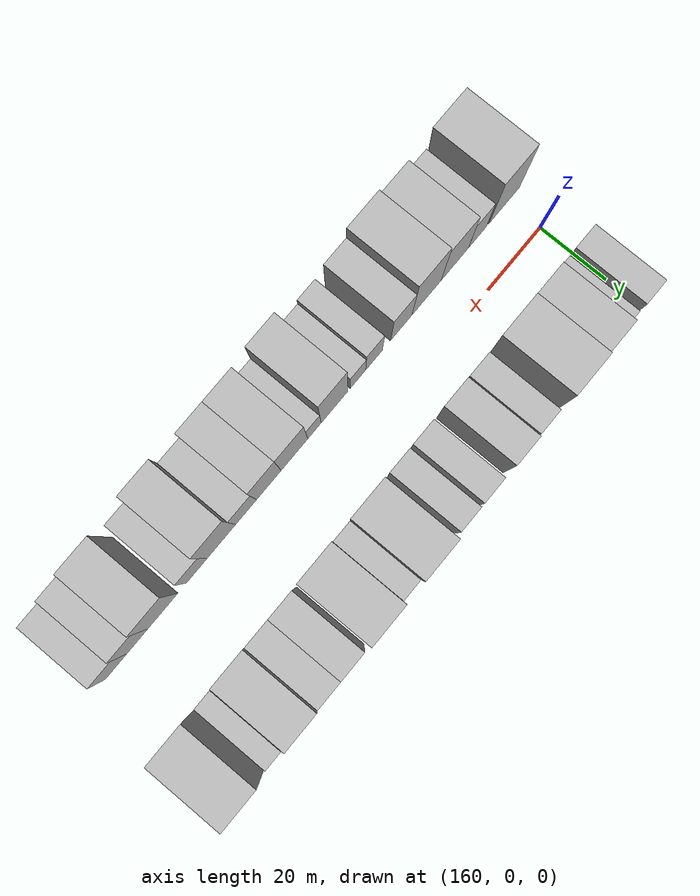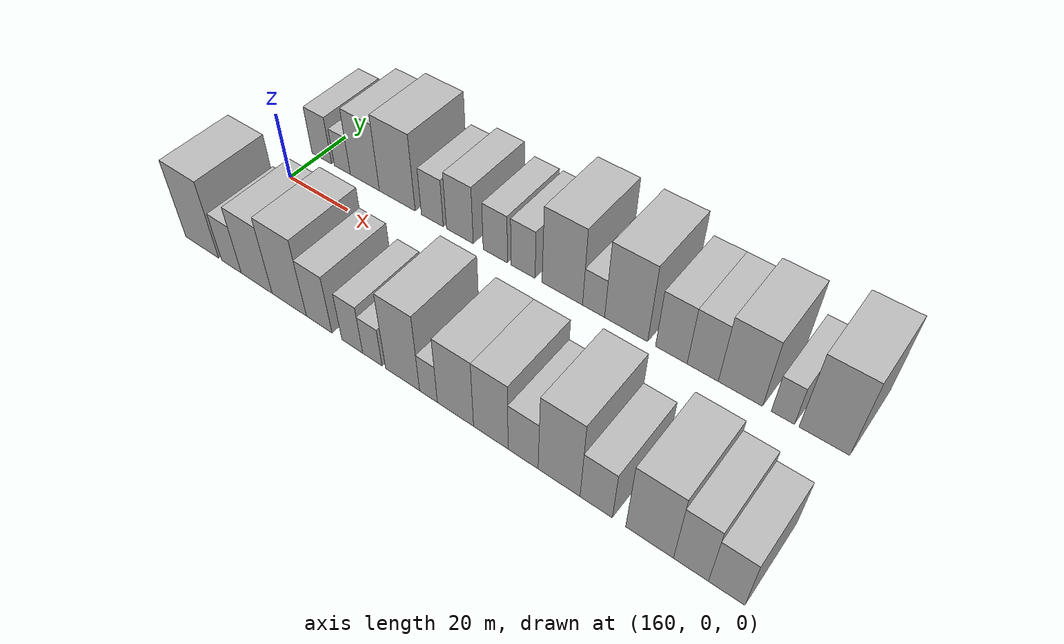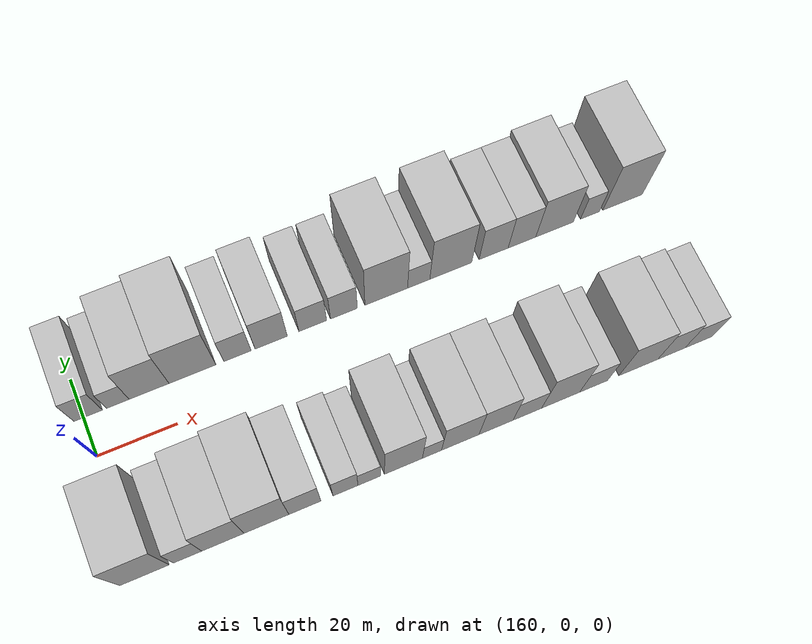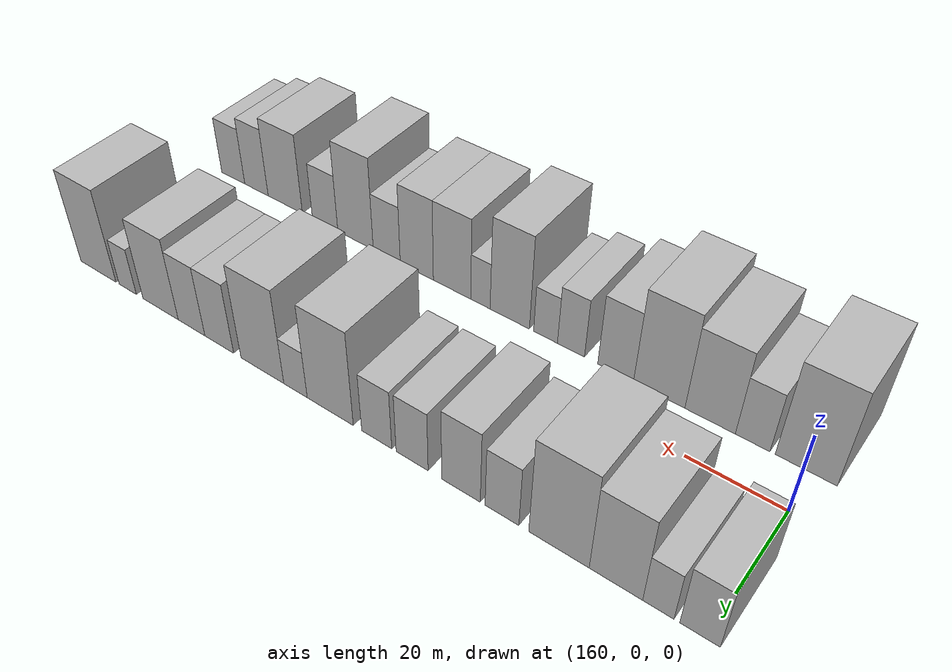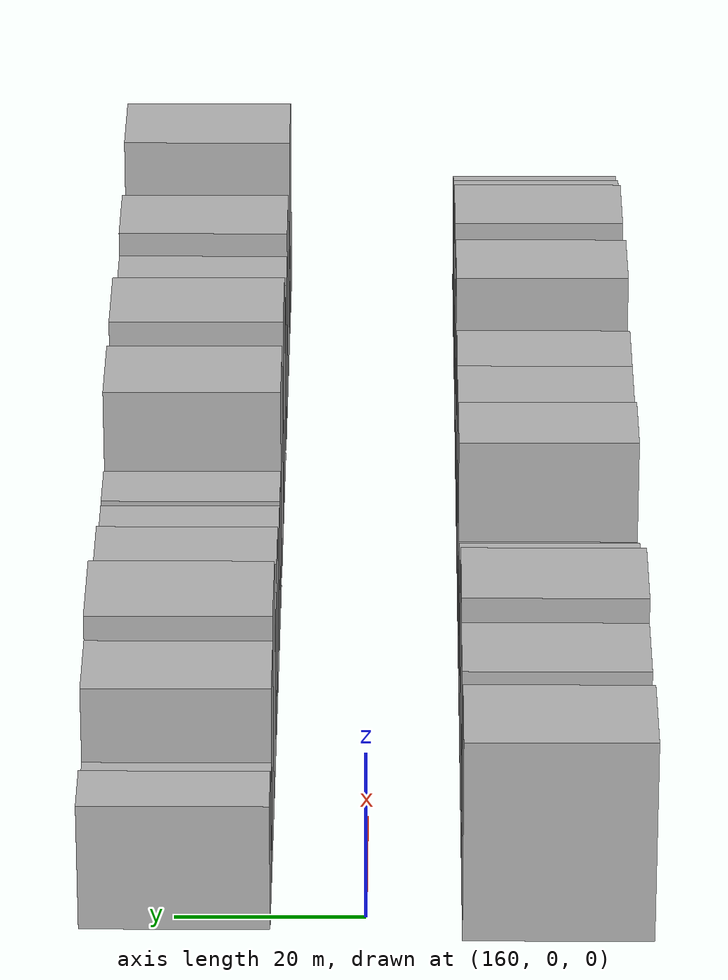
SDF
<sdf version="1.6">
 <world name="default">
  <model name="building_15">
   <static>1</static>
   <pose>161.1512 20.0000 0 0.000000 0.000000 1.570796</pose>
   <link name="link">
    <pose>0 0 7.50 0 0 0</pose>
    <collision name="collision"><geometry><box><size>20.0000 7.0626 15.0000</size></box></geometry></collision>
    <visual name="visual">
     <cast_shadows>0</cast_shadows>
     <geometry><box><size>20.0000 7.0626 15.0000</size></box></geometry>
     <material>
      <script>
       <uri>model://HANNAS_wall/materials/scripts</uri>
       <uri>model://HANNAS_wall/materials/textures</uri>
       <name>vrc/HANNAS_wall</name>
      </script>
     </material>
    </visual>
   </link>
  </model>
  <model name="building_16">
   <static>1</static>
   <pose>168.5036 20.0000 0 0.000000 0.000000 1.570796</pose>
   <link name="link">
    <pose>0 0 6.00 0 0 0</pose>
    <collision name="collision"><geometry><box><size>20.0000 5.6421 12.0000</size></box></geometry></collision>
    <visual name="visual">
     <cast_shadows>0</cast_shadows>
     <geometry><box><size>20.0000 5.6421 12.0000</size></box></geometry>
     <material>
      <script>
       <uri>model://HANNAS_wall/materials/scripts</uri>
       <uri>model://HANNAS_wall/materials/textures</uri>
       <name>vrc/HANNAS_wall</name>
      </script>
     </material>
    </visual>
   </link>
  </model>
  <model name="building_17">
   <static>1</static>
   <pose>176.3258 20.0000 0 0.000000 0.000000 1.570796</pose>
   <link name="link">
    <pose>0 0 10.50 0 0 0</pose>
    <collision name="collision"><geometry><box><size>20.0000 10.0022 21.0000</size></box></geometry></collision>
    <visual name="visual">
     <cast_shadows>0</cast_shadows>
     <geometry><box><size>20.0000 10.0022 21.0000</size></box></geometry>
     <material>
      <script>
       <uri>model://HANNAS_wall/materials/scripts</uri>
       <uri>model://HANNAS_wall/materials/textures</uri>
       <name>vrc/HANNAS_wall</name>
      </script>
     </material>
    </visual>
   </link>
  </model>
  <model name="building_18">
   <static>1</static>
   <pose>187.2742 20.0000 0 0.000000 0.000000 1.570796</pose>
   <link name="link">
    <pose>0 0 12.00 0 0 0</pose>
    <collision name="collision"><geometry><box><size>20.0000 11.8946 24.0000</size></box></geometry></collision>
    <visual name="visual">
     <cast_shadows>0</cast_shadows>
     <geometry><box><size>20.0000 11.8946 24.0000</size></box></geometry>
     <material>
      <script>
       <uri>model://HANNAS_wall/materials/scripts</uri>
       <uri>model://HANNAS_wall/materials/textures</uri>
       <name>vrc/HANNAS_wall</name>
      </script>
     </material>
    </visual>
   </link>
  </model>
  <model name="building_19">
   <static>1</static>
   <pose>198.7314 20.0000 0 0.000000 0.000000 1.570796</pose>
   <link name="link">
    <pose>0 0 7.50 0 0 0</pose>
    <collision name="collision"><geometry><box><size>20.0000 7.0198 15.0000</size></box></geometry></collision>
    <visual name="visual">
     <cast_shadows>0</cast_shadows>
     <geometry><box><size>20.0000 7.0198 15.0000</size></box></geometry>
     <material>
      <script>
       <uri>model://HANNAS_wall/materials/scripts</uri>
       <uri>model://HANNAS_wall/materials/textures</uri>
       <name>vrc/HANNAS_wall</name>
      </script>
     </material>
    </visual>
   </link>
  </model>
  <model name="building_20">
   <static>1</static>
   <pose>207.4007 20.0000 0 0.000000 0.000000 1.570796</pose>
   <link name="link">
    <pose>0 0 9.00 0 0 0</pose>
    <collision name="collision"><geometry><box><size>20.0000 8.3186 18.0000</size></box></geometry></collision>
    <visual name="visual">
     <cast_shadows>0</cast_shadows>
     <geometry><box><size>20.0000 8.3186 18.0000</size></box></geometry>
     <material>
      <script>
       <uri>model://HANNAS_wall/materials/scripts</uri>
       <uri>model://HANNAS_wall/materials/textures</uri>
       <name>vrc/HANNAS_wall</name>
      </script>
     </material>
    </visual>
   </link>
  </model>
  <model name="building_21">
   <static>1</static>
   <pose>218.1752 20.0000 0 0.000000 0.000000 1.570796</pose>
   <link name="link">
    <pose>0 0 7.50 0 0 0</pose>
    <collision name="collision"><geometry><box><size>20.0000 7.2304 15.0000</size></box></geometry></collision>
    <visual name="visual">
     <cast_shadows>0</cast_shadows>
     <geometry><box><size>20.0000 7.2304 15.0000</size></box></geometry>
     <material>
      <script>
       <uri>model://HANNAS_wall/materials/scripts</uri>
       <uri>model://HANNAS_wall/materials/textures</uri>
       <name>vrc/HANNAS_wall</name>
      </script>
     </material>
    </visual>
   </link>
  </model>
  <model name="building_22">
   <static>1</static>
   <pose>226.3134 20.0000 0 0.000000 0.000000 1.570796</pose>
   <link name="link">
    <pose>0 0 7.50 0 0 0</pose>
    <collision name="collision"><geometry><box><size>20.0000 7.0461 15.0000</size></box></geometry></collision>
    <visual name="visual">
     <cast_shadows>0</cast_shadows>
     <geometry><box><size>20.0000 7.0461 15.0000</size></box></geometry>
     <material>
      <script>
       <uri>model://HANNAS_wall/materials/scripts</uri>
       <uri>model://HANNAS_wall/materials/textures</uri>
       <name>vrc/HANNAS_wall</name>
      </script>
     </material>
    </visual>
   </link>
  </model>
  <model name="building_23">
   <static>1</static>
   <pose>237.4874 20.0000 0 0.000000 0.000000 1.570796</pose>
   <link name="link">
    <pose>0 0 12.00 0 0 0</pose>
    <collision name="collision"><geometry><box><size>20.0000 11.3018 24.0000</size></box></geometry></collision>
    <visual name="visual">
     <cast_shadows>0</cast_shadows>
     <geometry><box><size>20.0000 11.3018 24.0000</size></box></geometry>
     <material>
      <script>
       <uri>model://HANNAS_wall/materials/scripts</uri>
       <uri>model://HANNAS_wall/materials/textures</uri>
       <name>vrc/HANNAS_wall</name>
      </script>
     </material>
    </visual>
   </link>
  </model>
  <model name="building_24">
   <static>1</static>
   <pose>246.1157 20.0000 0 0.000000 0.000000 1.570796</pose>
   <link name="link">
    <pose>0 0 6.00 0 0 0</pose>
    <collision name="collision"><geometry><box><size>20.0000 5.9548 12.0000</size></box></geometry></collision>
    <visual name="visual">
     <cast_shadows>0</cast_shadows>
     <geometry><box><size>20.0000 5.9548 12.0000</size></box></geometry>
     <material>
      <script>
       <uri>model://HANNAS_wall/materials/scripts</uri>
       <uri>model://HANNAS_wall/materials/textures</uri>
       <name>vrc/HANNAS_wall</name>
      </script>
     </material>
    </visual>
   </link>
  </model>
  <model name="building_25">
   <static>1</static>
   <pose>254.7373 20.0000 0 0.000000 0.000000 1.570796</pose>
   <link name="link">
    <pose>0 0 12.00 0 0 0</pose>
    <collision name="collision"><geometry><box><size>20.0000 11.2885 24.0000</size></box></geometry></collision>
    <visual name="visual">
     <cast_shadows>0</cast_shadows>
     <geometry><box><size>20.0000 11.2885 24.0000</size></box></geometry>
     <material>
      <script>
       <uri>model://HANNAS_wall/materials/scripts</uri>
       <uri>model://HANNAS_wall/materials/textures</uri>
       <name>vrc/HANNAS_wall</name>
      </script>
     </material>
    </visual>
   </link>
  </model>
  <model name="building_26">
   <static>1</static>
   <pose>266.3388 20.0000 0 0.000000 0.000000 1.570796</pose>
   <link name="link">
    <pose>0 0 9.00 0 0 0</pose>
    <collision name="collision"><geometry><box><size>20.0000 7.9144 18.0000</size></box></geometry></collision>
    <visual name="visual">
     <cast_shadows>0</cast_shadows>
     <geometry><box><size>20.0000 7.9144 18.0000</size></box></geometry>
     <material>
      <script>
       <uri>model://HANNAS_wall/materials/scripts</uri>
       <uri>model://HANNAS_wall/materials/textures</uri>
       <name>vrc/HANNAS_wall</name>
      </script>
     </material>
    </visual>
   </link>
  </model>
  <model name="building_27">
   <static>1</static>
   <pose>274.0850 20.0000 0 0.000000 0.000000 1.570796</pose>
   <link name="link">
    <pose>0 0 9.00 0 0 0</pose>
    <collision name="collision"><geometry><box><size>20.0000 7.5781 18.0000</size></box></geometry></collision>
    <visual name="visual">
     <cast_shadows>0</cast_shadows>
     <geometry><box><size>20.0000 7.5781 18.0000</size></box></geometry>
     <material>
      <script>
       <uri>model://HANNAS_wall/materials/scripts</uri>
       <uri>model://HANNAS_wall/materials/textures</uri>
       <name>vrc/HANNAS_wall</name>
      </script>
     </material>
    </visual>
   </link>
  </model>
  <model name="building_28">
   <static>1</static>
   <pose>283.0653 20.0000 0 0.000000 0.000000 1.570796</pose>
   <link name="link">
    <pose>0 0 10.50 0 0 0</pose>
    <collision name="collision"><geometry><box><size>20.0000 10.3824 21.0000</size></box></geometry></collision>
    <visual name="visual">
     <cast_shadows>0</cast_shadows>
     <geometry><box><size>20.0000 10.3824 21.0000</size></box></geometry>
     <material>
      <script>
       <uri>model://HANNAS_wall/materials/scripts</uri>
       <uri>model://HANNAS_wall/materials/textures</uri>
       <name>vrc/HANNAS_wall</name>
      </script>
     </material>
    </visual>
   </link>
  </model>
  <model name="building_29">
   <static>1</static>
   <pose>292.8766 20.0000 0 0.000000 0.000000 1.570796</pose>
   <link name="link">
    <pose>0 0 6.00 0 0 0</pose>
    <collision name="collision"><geometry><box><size>20.0000 5.2401 12.0000</size></box></geometry></collision>
    <visual name="visual">
     <cast_shadows>0</cast_shadows>
     <geometry><box><size>20.0000 5.2401 12.0000</size></box></geometry>
     <material>
      <script>
       <uri>model://HANNAS_wall/materials/scripts</uri>
       <uri>model://HANNAS_wall/materials/textures</uri>
       <name>vrc/HANNAS_wall</name>
      </script>
     </material>
    </visual>
   </link>
  </model>
  <model name="building_30">
   <static>1</static>
   <pose>302.0170 20.0000 0 0.000000 0.000000 1.570796</pose>
   <link name="link">
    <pose>0 0 12.00 0 0 0</pose>
    <collision name="collision"><geometry><box><size>20.0000 11.0407 24.0000</size></box></geometry></collision>
    <visual name="visual">
     <cast_shadows>0</cast_shadows>
     <geometry><box><size>20.0000 11.0407 24.0000</size></box></geometry>
     <material>
      <script>
       <uri>model://HANNAS_wall/materials/scripts</uri>
       <uri>model://HANNAS_wall/materials/textures</uri>
       <name>vrc/HANNAS_wall</name>
      </script>
     </material>
    </visual>
   </link>
  </model>
  <model name="building_47">
   <static>1</static>
   <pose>161.3607 -20.0000 0 0.000000 0.000000 1.570796</pose>
   <link name="link">
    <pose>0 0 12.00 0 0 0</pose>
    <collision name="collision"><geometry><box><size>20.0000 11.7005 24.0000</size></box></geometry></collision>
    <visual name="visual">
     <cast_shadows>0</cast_shadows>
     <geometry><box><size>20.0000 11.7005 24.0000</size></box></geometry>
     <material>
      <script>
       <uri>model://HANNAS_wall/materials/scripts</uri>
       <uri>model://HANNAS_wall/materials/textures</uri>
       <name>vrc/HANNAS_wall</name>
      </script>
     </material>
    </visual>
   </link>
  </model>
  <model name="building_48">
   <static>1</static>
   <pose>171.6164 -20.0000 0 0.000000 0.000000 1.570796</pose>
   <link name="link">
    <pose>0 0 7.50 0 0 0</pose>
    <collision name="collision"><geometry><box><size>20.0000 6.8110 15.0000</size></box></geometry></collision>
    <visual name="visual">
     <cast_shadows>0</cast_shadows>
     <geometry><box><size>20.0000 6.8110 15.0000</size></box></geometry>
     <material>
      <script>
       <uri>model://HANNAS_wall/materials/scripts</uri>
       <uri>model://HANNAS_wall/materials/textures</uri>
       <name>vrc/HANNAS_wall</name>
      </script>
     </material>
    </visual>
   </link>
  </model>
  <model name="building_49">
   <static>1</static>
   <pose>180.1622 -20.0000 0 0.000000 0.000000 1.570796</pose>
   <link name="link">
    <pose>0 0 10.50 0 0 0</pose>
    <collision name="collision"><geometry><box><size>20.0000 10.2805 21.0000</size></box></geometry></collision>
    <visual name="visual">
     <cast_shadows>0</cast_shadows>
     <geometry><box><size>20.0000 10.2805 21.0000</size></box></geometry>
     <material>
      <script>
       <uri>model://HANNAS_wall/materials/scripts</uri>
       <uri>model://HANNAS_wall/materials/textures</uri>
       <name>vrc/HANNAS_wall</name>
      </script>
     </material>
    </visual>
   </link>
  </model>
  <model name="building_50">
   <static>1</static>
   <pose>190.7911 -20.0000 0 0.000000 0.000000 1.570796</pose>
   <link name="link">
    <pose>0 0 12.00 0 0 0</pose>
    <collision name="collision"><geometry><box><size>20.0000 10.9774 24.0000</size></box></geometry></collision>
    <visual name="visual">
     <cast_shadows>0</cast_shadows>
     <geometry><box><size>20.0000 10.9774 24.0000</size></box></geometry>
     <material>
      <script>
       <uri>model://HANNAS_wall/materials/scripts</uri>
       <uri>model://HANNAS_wall/materials/textures</uri>
       <name>vrc/HANNAS_wall</name>
      </script>
     </material>
    </visual>
   </link>
  </model>
  <model name="building_51">
   <static>1</static>
   <pose>200.2339 -20.0000 0 0.000000 0.000000 1.570796</pose>
   <link name="link">
    <pose>0 0 9.00 0 0 0</pose>
    <collision name="collision"><geometry><box><size>20.0000 7.9081 18.0000</size></box></geometry></collision>
    <visual name="visual">
     <cast_shadows>0</cast_shadows>
     <geometry><box><size>20.0000 7.9081 18.0000</size></box></geometry>
     <material>
      <script>
       <uri>model://HANNAS_wall/materials/scripts</uri>
       <uri>model://HANNAS_wall/materials/textures</uri>
       <name>vrc/HANNAS_wall</name>
      </script>
     </material>
    </visual>
   </link>
  </model>
  <model name="building_52">
   <static>1</static>
   <pose>210.3014 -20.0000 0 0.000000 0.000000 1.570796</pose>
   <link name="link">
    <pose>0 0 7.50 0 0 0</pose>
    <collision name="collision"><geometry><box><size>20.0000 6.2269 15.0000</size></box></geometry></collision>
    <visual name="visual">
     <cast_shadows>0</cast_shadows>
     <geometry><box><size>20.0000 6.2269 15.0000</size></box></geometry>
     <material>
      <script>
       <uri>model://HANNAS_wall/materials/scripts</uri>
       <uri>model://HANNAS_wall/materials/textures</uri>
       <name>vrc/HANNAS_wall</name>
      </script>
     </material>
    </visual>
   </link>
  </model>
  <model name="building_53">
   <static>1</static>
   <pose>216.2262 -20.0000 0 0.000000 0.000000 1.570796</pose>
   <link name="link">
    <pose>0 0 6.00 0 0 0</pose>
    <collision name="collision"><geometry><box><size>20.0000 5.6227 12.0000</size></box></geometry></collision>
    <visual name="visual">
     <cast_shadows>0</cast_shadows>
     <geometry><box><size>20.0000 5.6227 12.0000</size></box></geometry>
     <material>
      <script>
       <uri>model://HANNAS_wall/materials/scripts</uri>
       <uri>model://HANNAS_wall/materials/textures</uri>
       <name>vrc/HANNAS_wall</name>
      </script>
     </material>
    </visual>
   </link>
  </model>
  <model name="building_54">
   <static>1</static>
   <pose>224.8408 -20.0000 0 0.000000 0.000000 1.570796</pose>
   <link name="link">
    <pose>0 0 12.00 0 0 0</pose>
    <collision name="collision"><geometry><box><size>20.0000 9.6065 24.0000</size></box></geometry></collision>
    <visual name="visual">
     <cast_shadows>0</cast_shadows>
     <geometry><box><size>20.0000 9.6065 24.0000</size></box></geometry>
     <material>
      <script>
       <uri>model://HANNAS_wall/materials/scripts</uri>
       <uri>model://HANNAS_wall/materials/textures</uri>
       <name>vrc/HANNAS_wall</name>
      </script>
     </material>
    </visual>
   </link>
  </model>
  <model name="building_55">
   <static>1</static>
   <pose>232.0737 -20.0000 0 0.000000 0.000000 1.570796</pose>
   <link name="link">
    <pose>0 0 6.00 0 0 0</pose>
    <collision name="collision"><geometry><box><size>20.0000 4.8592 12.0000</size></box></geometry></collision>
    <visual name="visual">
     <cast_shadows>0</cast_shadows>
     <geometry><box><size>20.0000 4.8592 12.0000</size></box></geometry>
     <material>
      <script>
       <uri>model://HANNAS_wall/materials/scripts</uri>
       <uri>model://HANNAS_wall/materials/textures</uri>
       <name>vrc/HANNAS_wall</name>
      </script>
     </material>
    </visual>
   </link>
  </model>
  <model name="building_56">
   <static>1</static>
   <pose>239.3090 -20.0000 0 0.000000 0.000000 1.570796</pose>
   <link name="link">
    <pose>0 0 10.50 0 0 0</pose>
    <collision name="collision"><geometry><box><size>20.0000 9.6114 21.0000</size></box></geometry></collision>
    <visual name="visual">
     <cast_shadows>0</cast_shadows>
     <geometry><box><size>20.0000 9.6114 21.0000</size></box></geometry>
     <material>
      <script>
       <uri>model://HANNAS_wall/materials/scripts</uri>
       <uri>model://HANNAS_wall/materials/textures</uri>
       <name>vrc/HANNAS_wall</name>
      </script>
     </material>
    </visual>
   </link>
  </model>
  <model name="building_57">
   <static>1</static>
   <pose>248.5234 -20.0000 0 0.000000 0.000000 1.570796</pose>
   <link name="link">
    <pose>0 0 10.50 0 0 0</pose>
    <collision name="collision"><geometry><box><size>20.0000 8.8175 21.0000</size></box></geometry></collision>
    <visual name="visual">
     <cast_shadows>0</cast_shadows>
     <geometry><box><size>20.0000 8.8175 21.0000</size></box></geometry>
     <material>
      <script>
       <uri>model://HANNAS_wall/materials/scripts</uri>
       <uri>model://HANNAS_wall/materials/textures</uri>
       <name>vrc/HANNAS_wall</name>
      </script>
     </material>
    </visual>
   </link>
  </model>
  <model name="building_58">
   <static>1</static>
   <pose>256.6451 -20.0000 0 0.000000 0.000000 1.570796</pose>
   <link name="link">
    <pose>0 0 7.50 0 0 0</pose>
    <collision name="collision"><geometry><box><size>20.0000 7.4259 15.0000</size></box></geometry></collision>
    <visual name="visual">
     <cast_shadows>0</cast_shadows>
     <geometry><box><size>20.0000 7.4259 15.0000</size></box></geometry>
     <material>
      <script>
       <uri>model://HANNAS_wall/materials/scripts</uri>
       <uri>model://HANNAS_wall/materials/textures</uri>
       <name>vrc/HANNAS_wall</name>
      </script>
     </material>
    </visual>
   </link>
  </model>
  <model name="building_59">
   <static>1</static>
   <pose>265.3725 -20.0000 0 0.000000 0.000000 1.570796</pose>
   <link name="link">
    <pose>0 0 12.00 0 0 0</pose>
    <collision name="collision"><geometry><box><size>20.0000 10.0290 24.0000</size></box></geometry></collision>
    <visual name="visual">
     <cast_shadows>0</cast_shadows>
     <geometry><box><size>20.0000 10.0290 24.0000</size></box></geometry>
     <material>
      <script>
       <uri>model://HANNAS_wall/materials/scripts</uri>
       <uri>model://HANNAS_wall/materials/textures</uri>
       <name>vrc/HANNAS_wall</name>
      </script>
     </material>
    </visual>
   </link>
  </model>
  <model name="building_60">
   <static>1</static>
   <pose>274.1003 -20.0000 0 0.000000 0.000000 1.570796</pose>
   <link name="link">
    <pose>0 0 7.50 0 0 0</pose>
    <collision name="collision"><geometry><box><size>20.0000 7.4266 15.0000</size></box></geometry></collision>
    <visual name="visual">
     <cast_shadows>0</cast_shadows>
     <geometry><box><size>20.0000 7.4266 15.0000</size></box></geometry>
     <material>
      <script>
       <uri>model://HANNAS_wall/materials/scripts</uri>
       <uri>model://HANNAS_wall/materials/textures</uri>
       <name>vrc/HANNAS_wall</name>
      </script>
     </material>
    </visual>
   </link>
  </model>
  <model name="building_61">
   <static>1</static>
   <pose>286.0223 -20.0000 0 0.000000 0.000000 1.570796</pose>
   <link name="link">
    <pose>0 0 10.50 0 0 0</pose>
    <collision name="collision"><geometry><box><size>20.0000 10.4173 21.0000</size></box></geometry></collision>
    <visual name="visual">
     <cast_shadows>0</cast_shadows>
     <geometry><box><size>20.0000 10.4173 21.0000</size></box></geometry>
     <material>
      <script>
       <uri>model://HANNAS_wall/materials/scripts</uri>
       <uri>model://HANNAS_wall/materials/textures</uri>
       <name>vrc/HANNAS_wall</name>
      </script>
     </material>
    </visual>
   </link>
  </model>
  <model name="building_62">
   <static>1</static>
   <pose>294.9037 -20.0000 0 0.000000 0.000000 1.570796</pose>
   <link name="link">
    <pose>0 0 9.00 0 0 0</pose>
    <collision name="collision"><geometry><box><size>20.0000 7.3454 18.0000</size></box></geometry></collision>
    <visual name="visual">
     <cast_shadows>0</cast_shadows>
     <geometry><box><size>20.0000 7.3454 18.0000</size></box></geometry>
     <material>
      <script>
       <uri>model://HANNAS_wall/materials/scripts</uri>
       <uri>model://HANNAS_wall/materials/textures</uri>
       <name>vrc/HANNAS_wall</name>
      </script>
     </material>
    </visual>
   </link>
  </model>
  <model name="building_63">
   <static>1</static>
   <pose>302.2709 -20.0000 0 0.000000 0.000000 1.570796</pose>
   <link name="link">
    <pose>0 0 7.50 0 0 0</pose>
    <collision name="collision"><geometry><box><size>20.0000 7.3890 15.0000</size></box></geometry></collision>
    <visual name="visual">
     <cast_shadows>0</cast_shadows>
     <geometry><box><size>20.0000 7.3890 15.0000</size></box></geometry>
     <material>
      <script>
       <uri>model://HANNAS_wall/materials/scripts</uri>
       <uri>model://HANNAS_wall/materials/textures</uri>
       <name>vrc/HANNAS_wall</name>
      </script>
     </material>
    </visual>
   </link>
  </model>
 </world>
</sdf>
